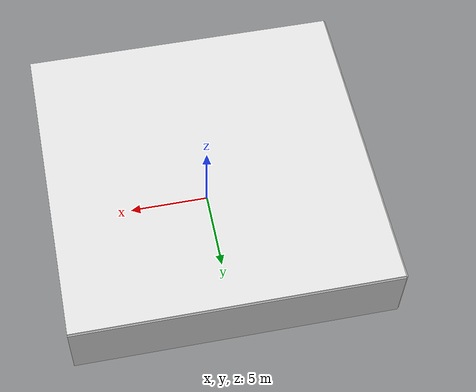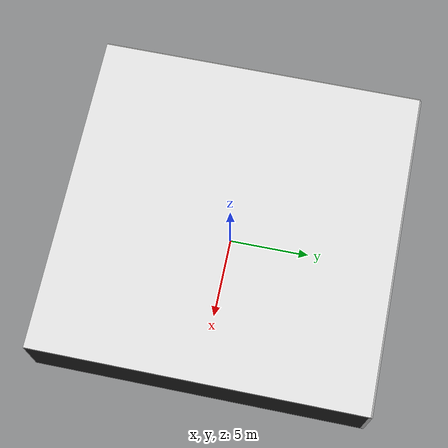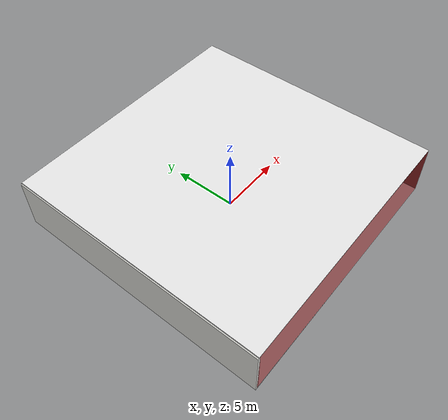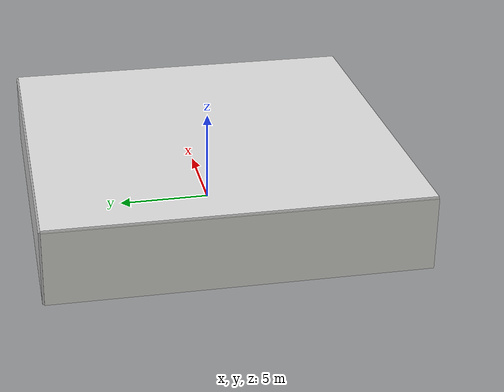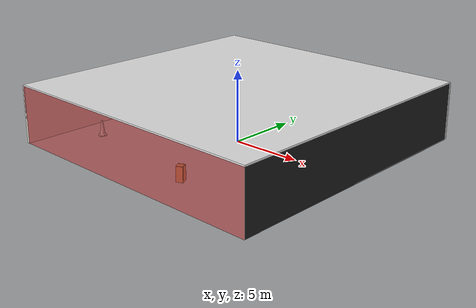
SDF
<sdf version="1.4">
 <world name="default">
  <physics type="ode">
   <max_step_size>0.001</max_step_size>
   <real_time_factor>1</real_time_factor>
   <real_time_update_rate>1000</real_time_update_rate>
   <gravity>0 0 -9.8</gravity>
  </physics>
  <scene><ambient>0.4 0.4 0.4 1</ambient><background>0.7 0.7 0.7 1</background><shadows>1</shadows></scene>
  <model name="Surrounding">
   <static>1</static>
   <link name="Ceiling">
    <collision name="Ceiling_Collision"><geometry><box><size>20 20 0.1</size></box></geometry></collision>
    <visual name="Ceiling_Visual">
     <geometry><box><size>20 20 0.1</size></box></geometry>
     <material>
      <script><uri>file://media/materials/scripts/gazebo.material</uri><name>Gazebo/WhiteGlow</name></script>
     </material>
    </visual>
    <pose>0 0 4.05 0 0 0</pose>
   </link>
   <link name="Wall_South">
    <collision name="Wall_South_Collision">
     <geometry><box><size>20 0 4</size></box></geometry>
     <pose>0 0 2 0 -0 0</pose>
    </collision>
    <visual name="Wall_South_Visual">
     <pose>0 0 2 0 -0 0</pose>
     <geometry><box><size>20 0 4</size></box></geometry>
     <material>
      <script><uri>file://media/materials/scripts/gazebo.material</uri><name>Gazebo/RedTransparent</name></script>
     </material>
    </visual>
    <velocity_decay><linear>0</linear><angular>0</angular></velocity_decay>
    <pose>0 -10 0 0 -0 0</pose>
   </link>
   <link name="Wall_East">
    <collision name="Wall_21_Collision">
     <geometry><box><size>20 0 4</size></box></geometry>
     <pose>0 0 2 0 -0 0</pose>
    </collision>
    <visual name="Wall_21_Visual">
     <pose>0 0 2 0 -0 0</pose>
     <geometry><box><size>20 0 4</size></box></geometry>
     <material>
      <script><uri>file://media/materials/scripts/gazebo.material</uri><name>Gazebo/FlatBlack</name></script>
     </material>
    </visual>
    <velocity_decay><linear>0</linear><angular>0</angular></velocity_decay>
    <pose>10 0 0 0 -0 1.5708</pose>
   </link>
   <link name="Wall_North">
    <collision name="Wall_22_Collision">
     <geometry><box><size>20 0.2 4</size></box></geometry>
     <pose>0 0 2 0 -0 0</pose>
    </collision>
    <visual name="Wall_22_Visual">
     <pose>0 0 2 0 -0 0</pose>
     <geometry><box><size>20 0.2 4</size></box></geometry>
     <material>
      <script><uri>file://media/materials/scripts/gazebo.material</uri><name>Gazebo/LightOff</name></script>
     </material>
    </visual>
    <velocity_decay><linear>0</linear><angular>0</angular></velocity_decay>
    <pose>0 10 0 0 -0 0</pose>
   </link>
   <link name="Wall_West">
    <collision name="Wall_23_Collision">
     <geometry><box><size>20 0.2 4</size></box></geometry>
     <pose>0 0 2 0 -0 0</pose>
    </collision>
    <visual name="Wall_23_Visual">
     <pose>0 0 2 0 -0 0</pose>
     <geometry><box><size>20 0.2 4</size></box></geometry>
     <material>
      <script><uri>file://media/materials/scripts/gazebo.material</uri><name>Gazebo/CeilingTiled</name></script>
     </material>
    </visual>
    <velocity_decay><linear>0</linear><angular>0</angular></velocity_decay>
    <pose>-10 0 0 0 0 -1.5708</pose>
   </link>
   <link name="Ground_link">
    <collision name="collision">
     <pose>0 0 .05 0 -0 0</pose>
     <geometry><box><size>20 20 0.1</size></box></geometry>
    </collision>
    <visual name="visual">
     <pose>0 0 .05 0 -0 0</pose>
     <geometry><box><size>20 20 0.1</size></box></geometry>
     <material>
      <script><uri>file://media/materials/scripts/gazebo.material</uri><name>Gazebo/GreyTransparent</name></script>
     </material>
    </visual>
   </link>
   <static>1</static>
  </model>
  <spherical_coordinates>
   <surface_model>EARTH_WGS84</surface_model>
   <latitude_deg>0</latitude_deg>
   <longitude_deg>0</longitude_deg>
   <elevation>0</elevation>
   <heading_deg>0</heading_deg>
  </spherical_coordinates>
  <light name="lightball_0" type="diffuse">
   <diffuse>0.8 0.8 0.8 1</diffuse>
   <specular>0.2 0.2 0.2 1</specular>
   <attenuation>
    <range>100</range>
    <constant>0.7</constant>
    <linear>0.01</linear>
    <quadratic>0.001</quadratic>
   </attenuation>
   <direction>-0.5 0.1 -0.9</direction>
   <pose>-8.01528138765 -5.8433866861 1.29676945666 0 0 0</pose>
  </light>
  <light name="lightball_1" type="diffuse">
   <diffuse>0.8 0.8 0.8 1</diffuse>
   <specular>0.2 0.2 0.2 1</specular>
   <attenuation>
    <range>100</range>
    <constant>0.7</constant>
    <linear>0.01</linear>
    <quadratic>0.001</quadratic>
   </attenuation>
   <direction>-0.5 0.1 -0.9</direction>
   <pose>-2.36376141346 9.64951688644 2.51995291896 0 0 0</pose>
  </light>
  <light name="lightball_2" type="diffuse">
   <diffuse>0.8 0.8 0.8 1</diffuse>
   <specular>0.2 0.2 0.2 1</specular>
   <attenuation>
    <range>100</range>
    <constant>0.7</constant>
    <linear>0.01</linear>
    <quadratic>0.001</quadratic>
   </attenuation>
   <direction>-0.5 0.1 -0.9</direction>
   <pose>-3.77928240739 -0.0291571115391 2.13355522057 0 0 0</pose>
  </light>
  <light name="lightball_3" type="diffuse">
   <diffuse>0.8 0.8 0.8 1</diffuse>
   <specular>0.2 0.2 0.2 1</specular>
   <attenuation>
    <range>100</range>
    <constant>0.7</constant>
    <linear>0.01</linear>
    <quadratic>0.001</quadratic>
   </attenuation>
   <direction>-0.5 0.1 -0.9</direction>
   <pose>-2.26754552603 1.69043919722 2.09351332226 0 0 0</pose>
  </light>
  <light name="lightball_4" type="diffuse">
   <diffuse>0.8 0.8 0.8 1</diffuse>
   <specular>0.2 0.2 0.2 1</specular>
   <attenuation>
    <range>100</range>
    <constant>0.7</constant>
    <linear>0.01</linear>
    <quadratic>0.001</quadratic>
   </attenuation>
   <direction>-0.5 0.1 -0.9</direction>
   <pose>9.8289557723 -7.08193360051 3.18423595723 0 0 0</pose>
  </light>
  <light name="lightball_5" type="diffuse">
   <diffuse>0.8 0.8 0.8 1</diffuse>
   <specular>0.2 0.2 0.2 1</specular>
   <attenuation>
    <range>100</range>
    <constant>0.7</constant>
    <linear>0.01</linear>
    <quadratic>0.001</quadratic>
   </attenuation>
   <direction>-0.5 0.1 -0.9</direction>
   <pose>6.26708442827 4.97491948822 2.34438366796 0 0 0</pose>
  </light>
  <include>
   <uri>model://construction_cone</uri>
   <pose>-7.59025270966 -5.63119156194 0 0 0 1.20609529134</pose>
  </include>
  <include><uri>model://cabinet</uri><pose>-7.153268911 1.06695784794 0 0 0 2.6787212427</pose></include>
  <include><uri>model://cabinet</uri><pose>2.1634633798 -7.20403937696 0 0 0 0.460600221844</pose></include>
  <include><uri>model://cabinet</uri><pose>1.84195981356 8.43049047262 0 0 0 0.631583247124</pose></include>
 </world>
</sdf>

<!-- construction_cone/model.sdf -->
<sdf version="1.5">
  <model name="Construction Cone">
    <link name="link">
      <collision name="collision">
        <geometry>
          <mesh>
            <scale>10 10 10</scale>
            <uri>file://isr-testbed/construction_cone/meshes/construction_cone.dae</uri>
          </mesh>
        </geometry>
      </collision>
      <visual name="visual">
        <geometry>
          <mesh>
            <scale>10 10 10</scale>
            <uri>file://isr-testbed/construction_cone/meshes/construction_cone.dae</uri>
          </mesh>
        </geometry>
      </visual>
    </link>
  </model>
</sdf>

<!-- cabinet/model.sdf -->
<sdf version="1.5">
  <model name="cabinet">
    <static>true</static>
    <link name="cabinet_bottom_plate">
      <inertial>
        <pose>0 0 -1 0 0 0</pose>
        <inertia>
          <ixx>2.050000</ixx>
          <ixy>0</ixy>
          <ixz>0</ixz>
          <iyy>2.050000</iyy>
          <iyz>0</iyz>
          <izz>2.050000</izz>
        </inertia>
        <mass>25.000000</mass>
      </inertial>
      <collision name="cabinet_bottom_plate_geom">
        <pose>0 0 0.010000 0 0 0</pose>
        <geometry>
          <box>
            <size>0.450000 0.450000 0.020000</size>
          </box>
        </geometry>
      </collision>
      <visual name="cabinet_bottom_plate_geom_visual">
        <pose>0 0 0.010000 0 0 0</pose>
        <geometry>
          <box>
            <size>0.450000 0.450000 0.020000</size>
          </box>
        </geometry>
        <material>
          <script>
            <uri>model://media/materials/scripts/gazebo.material</uri>
            <name>Gazebo/Wood</name>
          </script>
        </material>
      </visual>
      <collision name="cabinet_bottom_plate_geom_cabinet_back_plate">
        <pose>0.235000 0 0.510000 0 0 0</pose>
        <geometry>
          <box>
            <size>0.020000 0.450000 1.020000</size>
          </box>
        </geometry>
      </collision>
      <visual name="cabinet_bottom_plate_geom_cabinet_back_plate_visual">
        <pose>0.235000 0 0.510000 0 0 0</pose>
        <geometry>
          <box>
            <size>0.020000 0.450000 1.020000</size>
          </box>
        </geometry>
        <material>
          <script>
            <uri>model://media/materials/scripts/gazebo.material</uri>
            <name>Gazebo/Wood</name>
          </script>
        </material>
      </visual>
      <collision name="cabinet_bottom_plate_geom_cabinet_left_plate">
        <pose>0 0.235000 0.510000 0 0 0</pose>
        <geometry>
          <box>
            <size>0.450000 0.020000 1.020000</size>
          </box>
        </geometry>
      </collision>
      <visual name="cabinet_bottom_plate_geom_cabinet_left_plate_visual">
        <pose>0 0.235000 0.510000 0 0 0</pose>
        <geometry>
          <box>
            <size>0.450000 0.020000 1.020000</size>
          </box>
        </geometry>
        <material>
          <script>
            <uri>model://media/materials/scripts/gazebo.material</uri>
            <name>Gazebo/Wood</name>
          </script>
        </material>
      </visual>
      <collision name="cabinet_bottom_plate_geom_cabinet_middle_plate">
        <pose>0 0 0.510000 0 0 0</pose>
        <geometry>
          <box>
            <size>0.450000 0.450000 0.020000</size>
          </box>
        </geometry>
      </collision>
      <visual name="cabinet_bottom_plate_geom_cabinet_middle_plate_visual">
        <pose>0 0 0.510000 0 0 0</pose>
        <geometry>
          <box>
            <size>0.450000 0.450000 0.020000</size>
          </box>
        </geometry>
        <material>
          <script>
            <uri>model://media/materials/scripts/gazebo.material</uri>
            <name>Gazebo/Wood</name>
          </script>
        </material>
      </visual>
      <collision name="cabinet_bottom_plate_geom_cabinet_right_plate">
        <pose>0 -0.235000 0.510000 0 0 0</pose>
        <geometry>
          <box>
            <size>0.450000 0.020000 1.020000</size>
          </box>
        </geometry>
      </collision>
      <visual name="cabinet_bottom_plate_geom_cabinet_right_plate_visual">
        <pose>0 -0.235000 0.510000 0 0 0</pose>
        <geometry>
          <box>
            <size>0.450000 0.020000 1.020000</size>
          </box>
        </geometry>
        <material>
          <script>
            <uri>model://media/materials/scripts/gazebo.material</uri>
            <name>Gazebo/Wood</name>
          </script>
        </material>
      </visual>
      <collision name="cabinet_bottom_plate_geom_cabinet_top_plate">
        <pose>0 0 1.010000 0 0 0</pose>
        <geometry>
          <box>
            <size>0.450000 0.450000 0.020000</size>
          </box>
        </geometry>
      </collision>
      <visual name="cabinet_bottom_plate_geom_cabinet_top_plate_visual">
        <pose>0 0 1.010000 0 0 0</pose>
        <geometry>
          <box>
            <size>0.450000 0.450000 0.020000</size>
          </box>
        </geometry>
        <material>
          <script>
            <uri>model://media/materials/scripts/gazebo.material</uri>
            <name>Gazebo/Wood</name>
          </script>
        </material>
      </visual>
    </link>
  </model>
</sdf>
